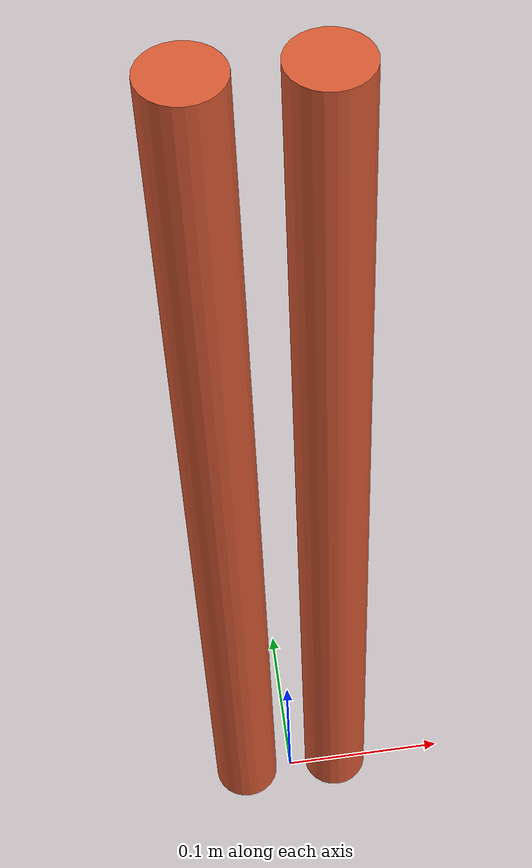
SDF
<?xml version="1.0" ?>
<!-- D-573 sim pedestrian: two leg-like cylinders (r 0.02 m, 0.60 m tall, 0.06 m apart along model x), static. Crosses the LiDAR plane (0.125 m). -->
<sdf version="1.9">
  <model name="crosswalk_pedestrian_legs">
    <static>true</static>
    <link name="leg_l">
      <pose>-0.03 0 0.3 0 0 0</pose>
      <collision name="c"><geometry><cylinder><radius>0.02</radius><length>0.6</length></cylinder></geometry></collision>
      <visual name="v"><geometry><cylinder><radius>0.02</radius><length>0.6</length></cylinder></geometry><material><diffuse>0.85 0.35 0.2 1</diffuse><ambient>0.85 0.35 0.2 1</ambient></material></visual>
    </link>
    <link name="leg_r">
      <pose>0.03 0 0.3 0 0 0</pose>
      <collision name="c"><geometry><cylinder><radius>0.02</radius><length>0.6</length></cylinder></geometry></collision>
      <visual name="v"><geometry><cylinder><radius>0.02</radius><length>0.6</length></cylinder></geometry><material><diffuse>0.85 0.35 0.2 1</diffuse><ambient>0.85 0.35 0.2 1</ambient></material></visual>
    </link>
  </model>
</sdf>
